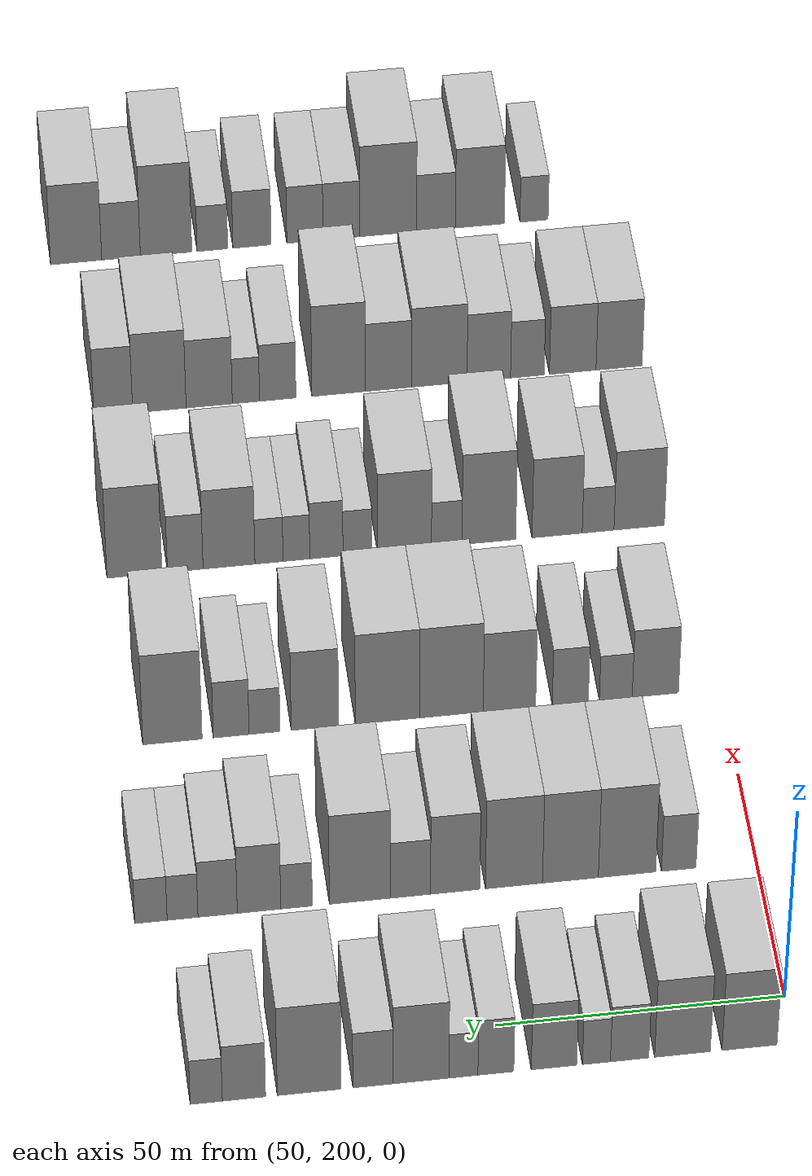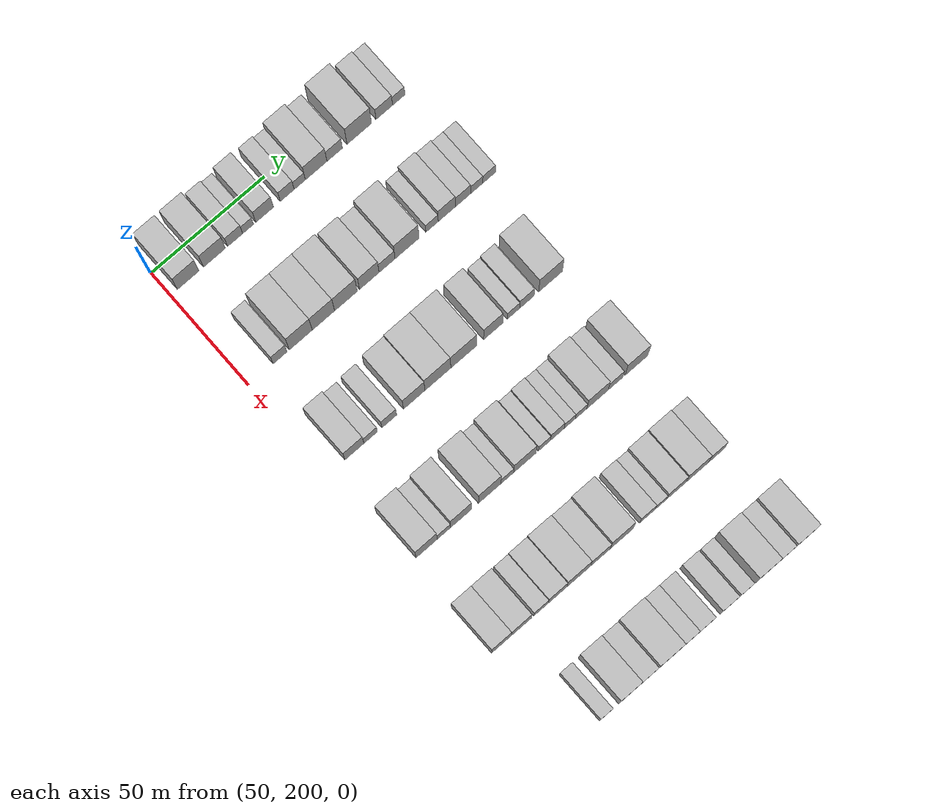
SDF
<sdf version="1.6">
 <world name="default">
  <model name="building_96">
   <static>1</static>
   <pose>50.0000 207.8356 0 0.000000 0.000000 0.000000</pose>
   <link name="link">
    <pose>0 0 10.50 0 0 0</pose>
    <collision name="collision"><geometry><box><size>20.0000 9.4873 21.0000</size></box></geometry></collision>
    <visual name="visual">
     <cast_shadows>0</cast_shadows>
     <geometry><box><size>20.0000 9.4873 21.0000</size></box></geometry>
     <material>
      <script>
       <uri>model://HANNAS_wall/materials/scripts</uri>
       <uri>model://HANNAS_wall/materials/textures</uri>
       <name>vrc/HANNAS_wall</name>
      </script>
     </material>
    </visual>
   </link>
  </model>
  <model name="building_97">
   <static>1</static>
   <pose>50.0000 219.3796 0 0.000000 0.000000 0.000000</pose>
   <link name="link">
    <pose>0 0 10.50 0 0 0</pose>
    <collision name="collision"><geometry><box><size>20.0000 9.6008 21.0000</size></box></geometry></collision>
    <visual name="visual">
     <cast_shadows>0</cast_shadows>
     <geometry><box><size>20.0000 9.6008 21.0000</size></box></geometry>
     <material>
      <script>
       <uri>model://HANNAS_wall/materials/scripts</uri>
       <uri>model://HANNAS_wall/materials/textures</uri>
       <name>vrc/HANNAS_wall</name>
      </script>
     </material>
    </visual>
   </link>
  </model>
  <model name="building_98">
   <static>1</static>
   <pose>50.0000 228.4856 0 0.000000 0.000000 0.000000</pose>
   <link name="link">
    <pose>0 0 7.50 0 0 0</pose>
    <collision name="collision"><geometry><box><size>20.0000 6.6113 15.0000</size></box></geometry></collision>
    <visual name="visual">
     <cast_shadows>0</cast_shadows>
     <geometry><box><size>20.0000 6.6113 15.0000</size></box></geometry>
     <material>
      <script>
       <uri>model://HANNAS_wall/materials/scripts</uri>
       <uri>model://HANNAS_wall/materials/textures</uri>
       <name>vrc/HANNAS_wall</name>
      </script>
     </material>
    </visual>
   </link>
  </model>
  <model name="building_99">
   <static>1</static>
   <pose>50.0000 234.1914 0 0.000000 0.000000 0.000000</pose>
   <link name="link">
    <pose>0 0 6.00 0 0 0</pose>
    <collision name="collision"><geometry><box><size>20.0000 4.8001 12.0000</size></box></geometry></collision>
    <visual name="visual">
     <cast_shadows>0</cast_shadows>
     <geometry><box><size>20.0000 4.8001 12.0000</size></box></geometry>
     <material>
      <script>
       <uri>model://HANNAS_wall/materials/scripts</uri>
       <uri>model://HANNAS_wall/materials/textures</uri>
       <name>vrc/HANNAS_wall</name>
      </script>
     </material>
    </visual>
   </link>
  </model>
  <model name="building_100">
   <static>1</static>
   <pose>50.0000 241.4872 0 0.000000 0.000000 0.000000</pose>
   <link name="link">
    <pose>0 0 9.00 0 0 0</pose>
    <collision name="collision"><geometry><box><size>20.0000 7.7915 18.0000</size></box></geometry></collision>
    <visual name="visual">
     <cast_shadows>0</cast_shadows>
     <geometry><box><size>20.0000 7.7915 18.0000</size></box></geometry>
     <material>
      <script>
       <uri>model://HANNAS_wall/materials/scripts</uri>
       <uri>model://HANNAS_wall/materials/textures</uri>
       <name>vrc/HANNAS_wall</name>
      </script>
     </material>
    </visual>
   </link>
  </model>
  <model name="building_101">
   <static>1</static>
   <pose>50.0000 251.4532 0 0.000000 0.000000 0.000000</pose>
   <link name="link">
    <pose>0 0 7.50 0 0 0</pose>
    <collision name="collision"><geometry><box><size>20.0000 6.1403 15.0000</size></box></geometry></collision>
    <visual name="visual">
     <cast_shadows>0</cast_shadows>
     <geometry><box><size>20.0000 6.1403 15.0000</size></box></geometry>
     <material>
      <script>
       <uri>model://HANNAS_wall/materials/scripts</uri>
       <uri>model://HANNAS_wall/materials/textures</uri>
       <name>vrc/HANNAS_wall</name>
      </script>
     </material>
    </visual>
   </link>
  </model>
  <model name="building_102">
   <static>1</static>
   <pose>50.0000 257.0127 0 0.000000 0.000000 0.000000</pose>
   <link name="link">
    <pose>0 0 6.00 0 0 0</pose>
    <collision name="collision"><geometry><box><size>20.0000 4.9788 12.0000</size></box></geometry></collision>
    <visual name="visual">
     <cast_shadows>0</cast_shadows>
     <geometry><box><size>20.0000 4.9788 12.0000</size></box></geometry>
     <material>
      <script>
       <uri>model://HANNAS_wall/materials/scripts</uri>
       <uri>model://HANNAS_wall/materials/textures</uri>
       <name>vrc/HANNAS_wall</name>
      </script>
     </material>
    </visual>
   </link>
  </model>
  <model name="building_103">
   <static>1</static>
   <pose>50.0000 264.2818 0 0.000000 0.000000 0.000000</pose>
   <link name="link">
    <pose>0 0 10.50 0 0 0</pose>
    <collision name="collision"><geometry><box><size>20.0000 9.5593 21.0000</size></box></geometry></collision>
    <visual name="visual">
     <cast_shadows>0</cast_shadows>
     <geometry><box><size>20.0000 9.5593 21.0000</size></box></geometry>
     <material>
      <script>
       <uri>model://HANNAS_wall/materials/scripts</uri>
       <uri>model://HANNAS_wall/materials/textures</uri>
       <name>vrc/HANNAS_wall</name>
      </script>
     </material>
    </visual>
   </link>
  </model>
  <model name="building_104">
   <static>1</static>
   <pose>50.0000 272.4915 0 0.000000 0.000000 0.000000</pose>
   <link name="link">
    <pose>0 0 7.50 0 0 0</pose>
    <collision name="collision"><geometry><box><size>20.0000 6.8600 15.0000</size></box></geometry></collision>
    <visual name="visual">
     <cast_shadows>0</cast_shadows>
     <geometry><box><size>20.0000 6.8600 15.0000</size></box></geometry>
     <material>
      <script>
       <uri>model://HANNAS_wall/materials/scripts</uri>
       <uri>model://HANNAS_wall/materials/textures</uri>
       <name>vrc/HANNAS_wall</name>
      </script>
     </material>
    </visual>
   </link>
  </model>
  <model name="building_105">
   <static>1</static>
   <pose>50.0000 283.3697 0 0.000000 0.000000 0.000000</pose>
   <link name="link">
    <pose>0 0 12.00 0 0 0</pose>
    <collision name="collision"><geometry><box><size>20.0000 10.8965 24.0000</size></box></geometry></collision>
    <visual name="visual">
     <cast_shadows>0</cast_shadows>
     <geometry><box><size>20.0000 10.8965 24.0000</size></box></geometry>
     <material>
      <script>
       <uri>model://HANNAS_wall/materials/scripts</uri>
       <uri>model://HANNAS_wall/materials/textures</uri>
       <name>vrc/HANNAS_wall</name>
      </script>
     </material>
    </visual>
   </link>
  </model>
  <model name="building_106">
   <static>1</static>
   <pose>50.0000 294.4948 0 0.000000 0.000000 0.000000</pose>
   <link name="link">
    <pose>0 0 7.50 0 0 0</pose>
    <collision name="collision"><geometry><box><size>20.0000 7.3537 15.0000</size></box></geometry></collision>
    <visual name="visual">
     <cast_shadows>0</cast_shadows>
     <geometry><box><size>20.0000 7.3537 15.0000</size></box></geometry>
     <material>
      <script>
       <uri>model://HANNAS_wall/materials/scripts</uri>
       <uri>model://HANNAS_wall/materials/textures</uri>
       <name>vrc/HANNAS_wall</name>
      </script>
     </material>
    </visual>
   </link>
  </model>
  <model name="building_107">
   <static>1</static>
   <pose>50.0000 300.9152 0 0.000000 0.000000 0.000000</pose>
   <link name="link">
    <pose>0 0 6.00 0 0 0</pose>
    <collision name="collision"><geometry><box><size>20.0000 5.4871 12.0000</size></box></geometry></collision>
    <visual name="visual">
     <cast_shadows>0</cast_shadows>
     <geometry><box><size>20.0000 5.4871 12.0000</size></box></geometry>
     <material>
      <script>
       <uri>model://HANNAS_wall/materials/scripts</uri>
       <uri>model://HANNAS_wall/materials/textures</uri>
       <name>vrc/HANNAS_wall</name>
      </script>
     </material>
    </visual>
   </link>
  </model>
  <model name="building_236">
   <static>1</static>
   <pose>90.0000 213.8010 0 0.000000 0.000000 0.000000</pose>
   <link name="link">
    <pose>0 0 7.50 0 0 0</pose>
    <collision name="collision"><geometry><box><size>20.0000 6.0938 15.0000</size></box></geometry></collision>
    <visual name="visual">
     <cast_shadows>0</cast_shadows>
     <geometry><box><size>20.0000 6.0938 15.0000</size></box></geometry>
     <material>
      <script>
       <uri>model://HANNAS_wall/materials/scripts</uri>
       <uri>model://HANNAS_wall/materials/textures</uri>
       <name>vrc/HANNAS_wall</name>
      </script>
     </material>
    </visual>
   </link>
  </model>
  <model name="building_237">
   <static>1</static>
   <pose>90.0000 222.8979 0 0.000000 0.000000 0.000000</pose>
   <link name="link">
    <pose>0 0 12.00 0 0 0</pose>
    <collision name="collision"><geometry><box><size>20.0000 10.0999 24.0000</size></box></geometry></collision>
    <visual name="visual">
     <cast_shadows>0</cast_shadows>
     <geometry><box><size>20.0000 10.0999 24.0000</size></box></geometry>
     <material>
      <script>
       <uri>model://HANNAS_wall/materials/scripts</uri>
       <uri>model://HANNAS_wall/materials/textures</uri>
       <name>vrc/HANNAS_wall</name>
      </script>
     </material>
    </visual>
   </link>
  </model>
  <model name="building_238">
   <static>1</static>
   <pose>90.0000 232.8708 0 0.000000 0.000000 0.000000</pose>
   <link name="link">
    <pose>0 0 12.00 0 0 0</pose>
    <collision name="collision"><geometry><box><size>20.0000 9.8459 24.0000</size></box></geometry></collision>
    <visual name="visual">
     <cast_shadows>0</cast_shadows>
     <geometry><box><size>20.0000 9.8459 24.0000</size></box></geometry>
     <material>
      <script>
       <uri>model://HANNAS_wall/materials/scripts</uri>
       <uri>model://HANNAS_wall/materials/textures</uri>
       <name>vrc/HANNAS_wall</name>
      </script>
     </material>
    </visual>
   </link>
  </model>
  <model name="building_239">
   <static>1</static>
   <pose>90.0000 242.7976 0 0.000000 0.000000 0.000000</pose>
   <link name="link">
    <pose>0 0 12.00 0 0 0</pose>
    <collision name="collision"><geometry><box><size>20.0000 10.0077 24.0000</size></box></geometry></collision>
    <visual name="visual">
     <cast_shadows>0</cast_shadows>
     <geometry><box><size>20.0000 10.0077 24.0000</size></box></geometry>
     <material>
      <script>
       <uri>model://HANNAS_wall/materials/scripts</uri>
       <uri>model://HANNAS_wall/materials/textures</uri>
       <name>vrc/HANNAS_wall</name>
      </script>
     </material>
    </visual>
   </link>
  </model>
  <model name="building_240">
   <static>1</static>
   <pose>90.0000 253.1156 0 0.000000 0.000000 0.000000</pose>
   <link name="link">
    <pose>0 0 10.50 0 0 0</pose>
    <collision name="collision"><geometry><box><size>20.0000 8.6283 21.0000</size></box></geometry></collision>
    <visual name="visual">
     <cast_shadows>0</cast_shadows>
     <geometry><box><size>20.0000 8.6283 21.0000</size></box></geometry>
     <material>
      <script>
       <uri>model://HANNAS_wall/materials/scripts</uri>
       <uri>model://HANNAS_wall/materials/textures</uri>
       <name>vrc/HANNAS_wall</name>
      </script>
     </material>
    </visual>
   </link>
  </model>
  <model name="building_241">
   <static>1</static>
   <pose>90.0000 260.9445 0 0.000000 0.000000 0.000000</pose>
   <link name="link">
    <pose>0 0 7.50 0 0 0</pose>
    <collision name="collision"><geometry><box><size>20.0000 7.0295 15.0000</size></box></geometry></collision>
    <visual name="visual">
     <cast_shadows>0</cast_shadows>
     <geometry><box><size>20.0000 7.0295 15.0000</size></box></geometry>
     <material>
      <script>
       <uri>model://HANNAS_wall/materials/scripts</uri>
       <uri>model://HANNAS_wall/materials/textures</uri>
       <name>vrc/HANNAS_wall</name>
      </script>
     </material>
    </visual>
   </link>
  </model>
  <model name="building_242">
   <static>1</static>
   <pose>90.0000 269.7858 0 0.000000 0.000000 0.000000</pose>
   <link name="link">
    <pose>0 0 12.00 0 0 0</pose>
    <collision name="collision"><geometry><box><size>20.0000 10.6531 24.0000</size></box></geometry></collision>
    <visual name="visual">
     <cast_shadows>0</cast_shadows>
     <geometry><box><size>20.0000 10.6531 24.0000</size></box></geometry>
     <material>
      <script>
       <uri>model://HANNAS_wall/materials/scripts</uri>
       <uri>model://HANNAS_wall/materials/textures</uri>
       <name>vrc/HANNAS_wall</name>
      </script>
     </material>
    </visual>
   </link>
  </model>
  <model name="building_243">
   <static>1</static>
   <pose>90.0000 280.8586 0 0.000000 0.000000 0.000000</pose>
   <link name="link">
    <pose>0 0 6.00 0 0 0</pose>
    <collision name="collision"><geometry><box><size>20.0000 5.4924 12.0000</size></box></geometry></collision>
    <visual name="visual">
     <cast_shadows>0</cast_shadows>
     <geometry><box><size>20.0000 5.4924 12.0000</size></box></geometry>
     <material>
      <script>
       <uri>model://HANNAS_wall/materials/scripts</uri>
       <uri>model://HANNAS_wall/materials/textures</uri>
       <name>vrc/HANNAS_wall</name>
      </script>
     </material>
    </visual>
   </link>
  </model>
  <model name="building_244">
   <static>1</static>
   <pose>90.0000 287.3994 0 0.000000 0.000000 0.000000</pose>
   <link name="link">
    <pose>0 0 9.00 0 0 0</pose>
    <collision name="collision"><geometry><box><size>20.0000 7.5894 18.0000</size></box></geometry></collision>
    <visual name="visual">
     <cast_shadows>0</cast_shadows>
     <geometry><box><size>20.0000 7.5894 18.0000</size></box></geometry>
     <material>
      <script>
       <uri>model://HANNAS_wall/materials/scripts</uri>
       <uri>model://HANNAS_wall/materials/textures</uri>
       <name>vrc/HANNAS_wall</name>
      </script>
     </material>
    </visual>
   </link>
  </model>
  <model name="building_245">
   <static>1</static>
   <pose>90.0000 294.6220 0 0.000000 0.000000 0.000000</pose>
   <link name="link">
    <pose>0 0 7.50 0 0 0</pose>
    <collision name="collision"><geometry><box><size>20.0000 6.8557 15.0000</size></box></geometry></collision>
    <visual name="visual">
     <cast_shadows>0</cast_shadows>
     <geometry><box><size>20.0000 6.8557 15.0000</size></box></geometry>
     <material>
      <script>
       <uri>model://HANNAS_wall/materials/scripts</uri>
       <uri>model://HANNAS_wall/materials/textures</uri>
       <name>vrc/HANNAS_wall</name>
      </script>
     </material>
    </visual>
   </link>
  </model>
  <model name="building_246">
   <static>1</static>
   <pose>90.0000 300.7354 0 0.000000 0.000000 0.000000</pose>
   <link name="link">
    <pose>0 0 6.00 0 0 0</pose>
    <collision name="collision"><geometry><box><size>20.0000 5.3711 12.0000</size></box></geometry></collision>
    <visual name="visual">
     <cast_shadows>0</cast_shadows>
     <geometry><box><size>20.0000 5.3711 12.0000</size></box></geometry>
     <material>
      <script>
       <uri>model://HANNAS_wall/materials/scripts</uri>
       <uri>model://HANNAS_wall/materials/textures</uri>
       <name>vrc/HANNAS_wall</name>
      </script>
     </material>
    </visual>
   </link>
  </model>
  <model name="building_247">
   <static>1</static>
   <pose>90.0000 306.2318 0 0.000000 0.000000 0.000000</pose>
   <link name="link">
    <pose>0 0 6.00 0 0 0</pose>
    <collision name="collision"><geometry><box><size>20.0000 5.6217 12.0000</size></box></geometry></collision>
    <visual name="visual">
     <cast_shadows>0</cast_shadows>
     <geometry><box><size>20.0000 5.6217 12.0000</size></box></geometry>
     <material>
      <script>
       <uri>model://HANNAS_wall/materials/scripts</uri>
       <uri>model://HANNAS_wall/materials/textures</uri>
       <name>vrc/HANNAS_wall</name>
      </script>
     </material>
    </visual>
   </link>
  </model>
  <model name="building_375">
   <static>1</static>
   <pose>130.0000 211.7803 0 0.000000 0.000000 0.000000</pose>
   <link name="link">
    <pose>0 0 9.00 0 0 0</pose>
    <collision name="collision"><geometry><box><size>20.0000 8.3317 18.0000</size></box></geometry></collision>
    <visual name="visual">
     <cast_shadows>0</cast_shadows>
     <geometry><box><size>20.0000 8.3317 18.0000</size></box></geometry>
     <material>
      <script>
       <uri>model://HANNAS_wall/materials/scripts</uri>
       <uri>model://HANNAS_wall/materials/textures</uri>
       <name>vrc/HANNAS_wall</name>
      </script>
     </material>
    </visual>
   </link>
  </model>
  <model name="building_376">
   <static>1</static>
   <pose>130.0000 218.9054 0 0.000000 0.000000 0.000000</pose>
   <link name="link">
    <pose>0 0 6.00 0 0 0</pose>
    <collision name="collision"><geometry><box><size>20.0000 5.9186 12.0000</size></box></geometry></collision>
    <visual name="visual">
     <cast_shadows>0</cast_shadows>
     <geometry><box><size>20.0000 5.9186 12.0000</size></box></geometry>
     <material>
      <script>
       <uri>model://HANNAS_wall/materials/scripts</uri>
       <uri>model://HANNAS_wall/materials/textures</uri>
       <name>vrc/HANNAS_wall</name>
      </script>
     </material>
    </visual>
   </link>
  </model>
  <model name="building_377">
   <static>1</static>
   <pose>130.0000 227.1018 0 0.000000 0.000000 0.000000</pose>
   <link name="link">
    <pose>0 0 7.50 0 0 0</pose>
    <collision name="collision"><geometry><box><size>20.0000 6.4743 15.0000</size></box></geometry></collision>
    <visual name="visual">
     <cast_shadows>0</cast_shadows>
     <geometry><box><size>20.0000 6.4743 15.0000</size></box></geometry>
     <material>
      <script>
       <uri>model://HANNAS_wall/materials/scripts</uri>
       <uri>model://HANNAS_wall/materials/textures</uri>
       <name>vrc/HANNAS_wall</name>
      </script>
     </material>
    </visual>
   </link>
  </model>
  <model name="building_378">
   <static>1</static>
   <pose>130.0000 238.0516 0 0.000000 0.000000 0.000000</pose>
   <link name="link">
    <pose>0 0 10.50 0 0 0</pose>
    <collision name="collision"><geometry><box><size>20.0000 9.4253 21.0000</size></box></geometry></collision>
    <visual name="visual">
     <cast_shadows>0</cast_shadows>
     <geometry><box><size>20.0000 9.4253 21.0000</size></box></geometry>
     <material>
      <script>
       <uri>model://HANNAS_wall/materials/scripts</uri>
       <uri>model://HANNAS_wall/materials/textures</uri>
       <name>vrc/HANNAS_wall</name>
      </script>
     </material>
    </visual>
   </link>
  </model>
  <model name="building_379">
   <static>1</static>
   <pose>130.0000 248.4766 0 0.000000 0.000000 0.000000</pose>
   <link name="link">
    <pose>0 0 12.00 0 0 0</pose>
    <collision name="collision"><geometry><box><size>20.0000 11.4246 24.0000</size></box></geometry></collision>
    <visual name="visual">
     <cast_shadows>0</cast_shadows>
     <geometry><box><size>20.0000 11.4246 24.0000</size></box></geometry>
     <material>
      <script>
       <uri>model://HANNAS_wall/materials/scripts</uri>
       <uri>model://HANNAS_wall/materials/textures</uri>
       <name>vrc/HANNAS_wall</name>
      </script>
     </material>
    </visual>
   </link>
  </model>
  <model name="building_380">
   <static>1</static>
   <pose>130.0000 259.9280 0 0.000000 0.000000 0.000000</pose>
   <link name="link">
    <pose>0 0 12.00 0 0 0</pose>
    <collision name="collision"><geometry><box><size>20.0000 11.4783 24.0000</size></box></geometry></collision>
    <visual name="visual">
     <cast_shadows>0</cast_shadows>
     <geometry><box><size>20.0000 11.4783 24.0000</size></box></geometry>
     <material>
      <script>
       <uri>model://HANNAS_wall/materials/scripts</uri>
       <uri>model://HANNAS_wall/materials/textures</uri>
       <name>vrc/HANNAS_wall</name>
      </script>
     </material>
    </visual>
   </link>
  </model>
  <model name="building_381">
   <static>1</static>
   <pose>130.0000 272.9007 0 0.000000 0.000000 0.000000</pose>
   <link name="link">
    <pose>0 0 10.50 0 0 0</pose>
    <collision name="collision"><geometry><box><size>20.0000 8.4670 21.0000</size></box></geometry></collision>
    <visual name="visual">
     <cast_shadows>0</cast_shadows>
     <geometry><box><size>20.0000 8.4670 21.0000</size></box></geometry>
     <material>
      <script>
       <uri>model://HANNAS_wall/materials/scripts</uri>
       <uri>model://HANNAS_wall/materials/textures</uri>
       <name>vrc/HANNAS_wall</name>
      </script>
     </material>
    </visual>
   </link>
  </model>
  <model name="building_382">
   <static>1</static>
   <pose>130.0000 281.8961 0 0.000000 0.000000 0.000000</pose>
   <link name="link">
    <pose>0 0 6.00 0 0 0</pose>
    <collision name="collision"><geometry><box><size>20.0000 5.5237 12.0000</size></box></geometry></collision>
    <visual name="visual">
     <cast_shadows>0</cast_shadows>
     <geometry><box><size>20.0000 5.5237 12.0000</size></box></geometry>
     <material>
      <script>
       <uri>model://HANNAS_wall/materials/scripts</uri>
       <uri>model://HANNAS_wall/materials/textures</uri>
       <name>vrc/HANNAS_wall</name>
      </script>
     </material>
    </visual>
   </link>
  </model>
  <model name="building_383">
   <static>1</static>
   <pose>130.0000 287.8518 0 0.000000 0.000000 0.000000</pose>
   <link name="link">
    <pose>0 0 7.50 0 0 0</pose>
    <collision name="collision"><geometry><box><size>20.0000 6.3878 15.0000</size></box></geometry></collision>
    <visual name="visual">
     <cast_shadows>0</cast_shadows>
     <geometry><box><size>20.0000 6.3878 15.0000</size></box></geometry>
     <material>
      <script>
       <uri>model://HANNAS_wall/materials/scripts</uri>
       <uri>model://HANNAS_wall/materials/textures</uri>
       <name>vrc/HANNAS_wall</name>
      </script>
     </material>
    </visual>
   </link>
  </model>
  <model name="building_384">
   <static>1</static>
   <pose>130.0000 298.3275 0 0.000000 0.000000 0.000000</pose>
   <link name="link">
    <pose>0 0 12.00 0 0 0</pose>
    <collision name="collision"><geometry><box><size>20.0000 10.5637 24.0000</size></box></geometry></collision>
    <visual name="visual">
     <cast_shadows>0</cast_shadows>
     <geometry><box><size>20.0000 10.5637 24.0000</size></box></geometry>
     <material>
      <script>
       <uri>model://HANNAS_wall/materials/scripts</uri>
       <uri>model://HANNAS_wall/materials/textures</uri>
       <name>vrc/HANNAS_wall</name>
      </script>
     </material>
    </visual>
   </link>
  </model>
  <model name="building_514">
   <static>1</static>
   <pose>170.0000 208.6148 0 0.000000 0.000000 0.000000</pose>
   <link name="link">
    <pose>0 0 10.50 0 0 0</pose>
    <collision name="collision"><geometry><box><size>20.0000 9.2839 21.0000</size></box></geometry></collision>
    <visual name="visual">
     <cast_shadows>0</cast_shadows>
     <geometry><box><size>20.0000 9.2839 21.0000</size></box></geometry>
     <material>
      <script>
       <uri>model://HANNAS_wall/materials/scripts</uri>
       <uri>model://HANNAS_wall/materials/textures</uri>
       <name>vrc/HANNAS_wall</name>
      </script>
     </material>
    </visual>
   </link>
  </model>
  <model name="building_515">
   <static>1</static>
   <pose>170.0000 216.1847 0 0.000000 0.000000 0.000000</pose>
   <link name="link">
    <pose>0 0 6.00 0 0 0</pose>
    <collision name="collision"><geometry><box><size>20.0000 5.8559 12.0000</size></box></geometry></collision>
    <visual name="visual">
     <cast_shadows>0</cast_shadows>
     <geometry><box><size>20.0000 5.8559 12.0000</size></box></geometry>
     <material>
      <script>
       <uri>model://HANNAS_wall/materials/scripts</uri>
       <uri>model://HANNAS_wall/materials/textures</uri>
       <name>vrc/HANNAS_wall</name>
      </script>
     </material>
    </visual>
   </link>
  </model>
  <model name="building_516">
   <static>1</static>
   <pose>170.0000 223.7292 0 0.000000 0.000000 0.000000</pose>
   <link name="link">
    <pose>0 0 10.50 0 0 0</pose>
    <collision name="collision"><geometry><box><size>20.0000 9.2330 21.0000</size></box></geometry></collision>
    <visual name="visual">
     <cast_shadows>0</cast_shadows>
     <geometry><box><size>20.0000 9.2330 21.0000</size></box></geometry>
     <material>
      <script>
       <uri>model://HANNAS_wall/materials/scripts</uri>
       <uri>model://HANNAS_wall/materials/textures</uri>
       <name>vrc/HANNAS_wall</name>
      </script>
     </material>
    </visual>
   </link>
  </model>
  <model name="building_517">
   <static>1</static>
   <pose>170.0000 236.2787 0 0.000000 0.000000 0.000000</pose>
   <link name="link">
    <pose>0 0 12.00 0 0 0</pose>
    <collision name="collision"><geometry><box><size>20.0000 9.8661 24.0000</size></box></geometry></collision>
    <visual name="visual">
     <cast_shadows>0</cast_shadows>
     <geometry><box><size>20.0000 9.8661 24.0000</size></box></geometry>
     <material>
      <script>
       <uri>model://HANNAS_wall/materials/scripts</uri>
       <uri>model://HANNAS_wall/materials/textures</uri>
       <name>vrc/HANNAS_wall</name>
      </script>
     </material>
    </visual>
   </link>
  </model>
  <model name="building_518">
   <static>1</static>
   <pose>170.0000 244.0102 0 0.000000 0.000000 0.000000</pose>
   <link name="link">
    <pose>0 0 6.00 0 0 0</pose>
    <collision name="collision"><geometry><box><size>20.0000 5.5968 12.0000</size></box></geometry></collision>
    <visual name="visual">
     <cast_shadows>0</cast_shadows>
     <geometry><box><size>20.0000 5.5968 12.0000</size></box></geometry>
     <material>
      <script>
       <uri>model://HANNAS_wall/materials/scripts</uri>
       <uri>model://HANNAS_wall/materials/textures</uri>
       <name>vrc/HANNAS_wall</name>
      </script>
     </material>
    </visual>
   </link>
  </model>
  <model name="building_519">
   <static>1</static>
   <pose>170.0000 251.7540 0 0.000000 0.000000 0.000000</pose>
   <link name="link">
    <pose>0 0 10.50 0 0 0</pose>
    <collision name="collision"><geometry><box><size>20.0000 9.8908 21.0000</size></box></geometry></collision>
    <visual name="visual">
     <cast_shadows>0</cast_shadows>
     <geometry><box><size>20.0000 9.8908 21.0000</size></box></geometry>
     <material>
      <script>
       <uri>model://HANNAS_wall/materials/scripts</uri>
       <uri>model://HANNAS_wall/materials/textures</uri>
       <name>vrc/HANNAS_wall</name>
      </script>
     </material>
    </visual>
   </link>
  </model>
  <model name="building_520">
   <static>1</static>
   <pose>170.0000 260.3541 0 0.000000 0.000000 0.000000</pose>
   <link name="link">
    <pose>0 0 6.00 0 0 0</pose>
    <collision name="collision"><geometry><box><size>20.0000 5.3095 12.0000</size></box></geometry></collision>
    <visual name="visual">
     <cast_shadows>0</cast_shadows>
     <geometry><box><size>20.0000 5.3095 12.0000</size></box></geometry>
     <material>
      <script>
       <uri>model://HANNAS_wall/materials/scripts</uri>
       <uri>model://HANNAS_wall/materials/textures</uri>
       <name>vrc/HANNAS_wall</name>
      </script>
     </material>
    </visual>
   </link>
  </model>
  <model name="building_521">
   <static>1</static>
   <pose>170.0000 266.0452 0 0.000000 0.000000 0.000000</pose>
   <link name="link">
    <pose>0 0 7.50 0 0 0</pose>
    <collision name="collision"><geometry><box><size>20.0000 6.0726 15.0000</size></box></geometry></collision>
    <visual name="visual">
     <cast_shadows>0</cast_shadows>
     <geometry><box><size>20.0000 6.0726 15.0000</size></box></geometry>
     <material>
      <script>
       <uri>model://HANNAS_wall/materials/scripts</uri>
       <uri>model://HANNAS_wall/materials/textures</uri>
       <name>vrc/HANNAS_wall</name>
      </script>
     </material>
    </visual>
   </link>
  </model>
  <model name="building_522">
   <static>1</static>
   <pose>170.0000 271.5279 0 0.000000 0.000000 0.000000</pose>
   <link name="link">
    <pose>0 0 6.00 0 0 0</pose>
    <collision name="collision"><geometry><box><size>20.0000 4.8929 12.0000</size></box></geometry></collision>
    <visual name="visual">
     <cast_shadows>0</cast_shadows>
     <geometry><box><size>20.0000 4.8929 12.0000</size></box></geometry>
     <material>
      <script>
       <uri>model://HANNAS_wall/materials/scripts</uri>
       <uri>model://HANNAS_wall/materials/textures</uri>
       <name>vrc/HANNAS_wall</name>
      </script>
     </material>
    </visual>
   </link>
  </model>
  <model name="building_523">
   <static>1</static>
   <pose>170.0000 276.5375 0 0.000000 0.000000 0.000000</pose>
   <link name="link">
    <pose>0 0 6.00 0 0 0</pose>
    <collision name="collision"><geometry><box><size>20.0000 5.1263 12.0000</size></box></geometry></collision>
    <visual name="visual">
     <cast_shadows>0</cast_shadows>
     <geometry><box><size>20.0000 5.1263 12.0000</size></box></geometry>
     <material>
      <script>
       <uri>model://HANNAS_wall/materials/scripts</uri>
       <uri>model://HANNAS_wall/materials/textures</uri>
       <name>vrc/HANNAS_wall</name>
      </script>
     </material>
    </visual>
   </link>
  </model>
  <model name="building_524">
   <static>1</static>
   <pose>170.0000 283.8360 0 0.000000 0.000000 0.000000</pose>
   <link name="link">
    <pose>0 0 10.50 0 0 0</pose>
    <collision name="collision"><geometry><box><size>20.0000 9.4705 21.0000</size></box></geometry></collision>
    <visual name="visual">
     <cast_shadows>0</cast_shadows>
     <geometry><box><size>20.0000 9.4705 21.0000</size></box></geometry>
     <material>
      <script>
       <uri>model://HANNAS_wall/materials/scripts</uri>
       <uri>model://HANNAS_wall/materials/textures</uri>
       <name>vrc/HANNAS_wall</name>
      </script>
     </material>
    </visual>
   </link>
  </model>
  <model name="building_525">
   <static>1</static>
   <pose>170.0000 291.8179 0 0.000000 0.000000 0.000000</pose>
   <link name="link">
    <pose>0 0 7.50 0 0 0</pose>
    <collision name="collision"><geometry><box><size>20.0000 6.4934 15.0000</size></box></geometry></collision>
    <visual name="visual">
     <cast_shadows>0</cast_shadows>
     <geometry><box><size>20.0000 6.4934 15.0000</size></box></geometry>
     <material>
      <script>
       <uri>model://HANNAS_wall/materials/scripts</uri>
       <uri>model://HANNAS_wall/materials/textures</uri>
       <name>vrc/HANNAS_wall</name>
      </script>
     </material>
    </visual>
   </link>
  </model>
  <model name="building_526">
   <static>1</static>
   <pose>170.0000 301.0713 0 0.000000 0.000000 0.000000</pose>
   <link name="link">
    <pose>0 0 12.00 0 0 0</pose>
    <collision name="collision"><geometry><box><size>20.0000 10.0132 24.0000</size></box></geometry></collision>
    <visual name="visual">
     <cast_shadows>0</cast_shadows>
     <geometry><box><size>20.0000 10.0132 24.0000</size></box></geometry>
     <material>
      <script>
       <uri>model://HANNAS_wall/materials/scripts</uri>
       <uri>model://HANNAS_wall/materials/textures</uri>
       <name>vrc/HANNAS_wall</name>
      </script>
     </material>
    </visual>
   </link>
  </model>
  <model name="building_652">
   <static>1</static>
   <pose>210.0000 206.3410 0 0.000000 0.000000 0.000000</pose>
   <link name="link">
    <pose>0 0 9.00 0 0 0</pose>
    <collision name="collision"><geometry><box><size>20.0000 8.6662 18.0000</size></box></geometry></collision>
    <visual name="visual">
     <cast_shadows>0</cast_shadows>
     <geometry><box><size>20.0000 8.6662 18.0000</size></box></geometry>
     <material>
      <script>
       <uri>model://HANNAS_wall/materials/scripts</uri>
       <uri>model://HANNAS_wall/materials/textures</uri>
       <name>vrc/HANNAS_wall</name>
      </script>
     </material>
    </visual>
   </link>
  </model>
  <model name="building_653">
   <static>1</static>
   <pose>210.0000 215.0554 0 0.000000 0.000000 0.000000</pose>
   <link name="link">
    <pose>0 0 9.00 0 0 0</pose>
    <collision name="collision"><geometry><box><size>20.0000 8.7626 18.0000</size></box></geometry></collision>
    <visual name="visual">
     <cast_shadows>0</cast_shadows>
     <geometry><box><size>20.0000 8.7626 18.0000</size></box></geometry>
     <material>
      <script>
       <uri>model://HANNAS_wall/materials/scripts</uri>
       <uri>model://HANNAS_wall/materials/textures</uri>
       <name>vrc/HANNAS_wall</name>
      </script>
     </material>
    </visual>
   </link>
  </model>
  <model name="building_654">
   <static>1</static>
   <pose>210.0000 223.5914 0 0.000000 0.000000 0.000000</pose>
   <link name="link">
    <pose>0 0 7.50 0 0 0</pose>
    <collision name="collision"><geometry><box><size>20.0000 6.3094 15.0000</size></box></geometry></collision>
    <visual name="visual">
     <cast_shadows>0</cast_shadows>
     <geometry><box><size>20.0000 6.3094 15.0000</size></box></geometry>
     <material>
      <script>
       <uri>model://HANNAS_wall/materials/scripts</uri>
       <uri>model://HANNAS_wall/materials/textures</uri>
       <name>vrc/HANNAS_wall</name>
      </script>
     </material>
    </visual>
   </link>
  </model>
  <model name="building_655">
   <static>1</static>
   <pose>210.0000 230.8331 0 0.000000 0.000000 0.000000</pose>
   <link name="link">
    <pose>0 0 9.00 0 0 0</pose>
    <collision name="collision"><geometry><box><size>20.0000 8.1740 18.0000</size></box></geometry></collision>
    <visual name="visual">
     <cast_shadows>0</cast_shadows>
     <geometry><box><size>20.0000 8.1740 18.0000</size></box></geometry>
     <material>
      <script>
       <uri>model://HANNAS_wall/materials/scripts</uri>
       <uri>model://HANNAS_wall/materials/textures</uri>
       <name>vrc/HANNAS_wall</name>
      </script>
     </material>
    </visual>
   </link>
  </model>
  <model name="building_656">
   <static>1</static>
   <pose>210.0000 240.1173 0 0.000000 0.000000 0.000000</pose>
   <link name="link">
    <pose>0 0 10.50 0 0 0</pose>
    <collision name="collision"><geometry><box><size>20.0000 10.3945 21.0000</size></box></geometry></collision>
    <visual name="visual">
     <cast_shadows>0</cast_shadows>
     <geometry><box><size>20.0000 10.3945 21.0000</size></box></geometry>
     <material>
      <script>
       <uri>model://HANNAS_wall/materials/scripts</uri>
       <uri>model://HANNAS_wall/materials/textures</uri>
       <name>vrc/HANNAS_wall</name>
      </script>
     </material>
    </visual>
   </link>
  </model>
  <model name="building_657">
   <static>1</static>
   <pose>210.0000 249.6280 0 0.000000 0.000000 0.000000</pose>
   <link name="link">
    <pose>0 0 9.00 0 0 0</pose>
    <collision name="collision"><geometry><box><size>20.0000 8.6270 18.0000</size></box></geometry></collision>
    <visual name="visual">
     <cast_shadows>0</cast_shadows>
     <geometry><box><size>20.0000 8.6270 18.0000</size></box></geometry>
     <material>
      <script>
       <uri>model://HANNAS_wall/materials/scripts</uri>
       <uri>model://HANNAS_wall/materials/textures</uri>
       <name>vrc/HANNAS_wall</name>
      </script>
     </material>
    </visual>
   </link>
  </model>
  <model name="building_658">
   <static>1</static>
   <pose>210.0000 258.9503 0 0.000000 0.000000 0.000000</pose>
   <link name="link">
    <pose>0 0 12.00 0 0 0</pose>
    <collision name="collision"><geometry><box><size>20.0000 10.0175 24.0000</size></box></geometry></collision>
    <visual name="visual">
     <cast_shadows>0</cast_shadows>
     <geometry><box><size>20.0000 10.0175 24.0000</size></box></geometry>
     <material>
      <script>
       <uri>model://HANNAS_wall/materials/scripts</uri>
       <uri>model://HANNAS_wall/materials/textures</uri>
       <name>vrc/HANNAS_wall</name>
      </script>
     </material>
    </visual>
   </link>
  </model>
  <model name="building_659">
   <static>1</static>
   <pose>210.0000 270.3493 0 0.000000 0.000000 0.000000</pose>
   <link name="link">
    <pose>0 0 7.50 0 0 0</pose>
    <collision name="collision"><geometry><box><size>20.0000 6.7804 15.0000</size></box></geometry></collision>
    <visual name="visual">
     <cast_shadows>0</cast_shadows>
     <geometry><box><size>20.0000 6.7804 15.0000</size></box></geometry>
     <material>
      <script>
       <uri>model://HANNAS_wall/materials/scripts</uri>
       <uri>model://HANNAS_wall/materials/textures</uri>
       <name>vrc/HANNAS_wall</name>
      </script>
     </material>
    </visual>
   </link>
  </model>
  <model name="building_660">
   <static>1</static>
   <pose>210.0000 276.2804 0 0.000000 0.000000 0.000000</pose>
   <link name="link">
    <pose>0 0 6.00 0 0 0</pose>
    <collision name="collision"><geometry><box><size>20.0000 5.0818 12.0000</size></box></geometry></collision>
    <visual name="visual">
     <cast_shadows>0</cast_shadows>
     <geometry><box><size>20.0000 5.0818 12.0000</size></box></geometry>
     <material>
      <script>
       <uri>model://HANNAS_wall/materials/scripts</uri>
       <uri>model://HANNAS_wall/materials/textures</uri>
       <name>vrc/HANNAS_wall</name>
      </script>
     </material>
    </visual>
   </link>
  </model>
  <model name="building_661">
   <static>1</static>
   <pose>210.0000 283.1268 0 0.000000 0.000000 0.000000</pose>
   <link name="link">
    <pose>0 0 9.00 0 0 0</pose>
    <collision name="collision"><geometry><box><size>20.0000 8.6110 18.0000</size></box></geometry></collision>
    <visual name="visual">
     <cast_shadows>0</cast_shadows>
     <geometry><box><size>20.0000 8.6110 18.0000</size></box></geometry>
     <material>
      <script>
       <uri>model://HANNAS_wall/materials/scripts</uri>
       <uri>model://HANNAS_wall/materials/textures</uri>
       <name>vrc/HANNAS_wall</name>
      </script>
     </material>
    </visual>
   </link>
  </model>
  <model name="building_662">
   <static>1</static>
   <pose>210.0000 292.4066 0 0.000000 0.000000 0.000000</pose>
   <link name="link">
    <pose>0 0 10.50 0 0 0</pose>
    <collision name="collision"><geometry><box><size>20.0000 9.9487 21.0000</size></box></geometry></collision>
    <visual name="visual">
     <cast_shadows>0</cast_shadows>
     <geometry><box><size>20.0000 9.9487 21.0000</size></box></geometry>
     <material>
      <script>
       <uri>model://HANNAS_wall/materials/scripts</uri>
       <uri>model://HANNAS_wall/materials/textures</uri>
       <name>vrc/HANNAS_wall</name>
      </script>
     </material>
    </visual>
   </link>
  </model>
  <model name="building_663">
   <static>1</static>
   <pose>210.0000 300.9876 0 0.000000 0.000000 0.000000</pose>
   <link name="link">
    <pose>0 0 9.00 0 0 0</pose>
    <collision name="collision"><geometry><box><size>20.0000 7.2133 18.0000</size></box></geometry></collision>
    <visual name="visual">
     <cast_shadows>0</cast_shadows>
     <geometry><box><size>20.0000 7.2133 18.0000</size></box></geometry>
     <material>
      <script>
       <uri>model://HANNAS_wall/materials/scripts</uri>
       <uri>model://HANNAS_wall/materials/textures</uri>
       <name>vrc/HANNAS_wall</name>
      </script>
     </material>
    </visual>
   </link>
  </model>
  <model name="building_797">
   <static>1</static>
   <pose>250.0000 216.6923 0 0.000000 0.000000 0.000000</pose>
   <link name="link">
    <pose>0 0 6.00 0 0 0</pose>
    <collision name="collision"><geometry><box><size>20.0000 5.3977 12.0000</size></box></geometry></collision>
    <visual name="visual">
     <cast_shadows>0</cast_shadows>
     <geometry><box><size>20.0000 5.3977 12.0000</size></box></geometry>
     <material>
      <script>
       <uri>model://HANNAS_wall/materials/scripts</uri>
       <uri>model://HANNAS_wall/materials/textures</uri>
       <name>vrc/HANNAS_wall</name>
      </script>
     </material>
    </visual>
   </link>
  </model>
  <model name="building_798">
   <static>1</static>
   <pose>250.0000 227.0766 0 0.000000 0.000000 0.000000</pose>
   <link name="link">
    <pose>0 0 10.50 0 0 0</pose>
    <collision name="collision"><geometry><box><size>20.0000 9.3710 21.0000</size></box></geometry></collision>
    <visual name="visual">
     <cast_shadows>0</cast_shadows>
     <geometry><box><size>20.0000 9.3710 21.0000</size></box></geometry>
     <material>
      <script>
       <uri>model://HANNAS_wall/materials/scripts</uri>
       <uri>model://HANNAS_wall/materials/textures</uri>
       <name>vrc/HANNAS_wall</name>
      </script>
     </material>
    </visual>
   </link>
  </model>
  <model name="building_799">
   <static>1</static>
   <pose>250.0000 235.4739 0 0.000000 0.000000 0.000000</pose>
   <link name="link">
    <pose>0 0 7.50 0 0 0</pose>
    <collision name="collision"><geometry><box><size>20.0000 7.4236 15.0000</size></box></geometry></collision>
    <visual name="visual">
     <cast_shadows>0</cast_shadows>
     <geometry><box><size>20.0000 7.4236 15.0000</size></box></geometry>
     <material>
      <script>
       <uri>model://HANNAS_wall/materials/scripts</uri>
       <uri>model://HANNAS_wall/materials/textures</uri>
       <name>vrc/HANNAS_wall</name>
      </script>
     </material>
    </visual>
   </link>
  </model>
  <model name="building_800">
   <static>1</static>
   <pose>250.0000 244.6387 0 0.000000 0.000000 0.000000</pose>
   <link name="link">
    <pose>0 0 12.00 0 0 0</pose>
    <collision name="collision"><geometry><box><size>20.0000 10.9059 24.0000</size></box></geometry></collision>
    <visual name="visual">
     <cast_shadows>0</cast_shadows>
     <geometry><box><size>20.0000 10.9059 24.0000</size></box></geometry>
     <material>
      <script>
       <uri>model://HANNAS_wall/materials/scripts</uri>
       <uri>model://HANNAS_wall/materials/textures</uri>
       <name>vrc/HANNAS_wall</name>
      </script>
     </material>
    </visual>
   </link>
  </model>
  <model name="building_801">
   <static>1</static>
   <pose>250.0000 253.5973 0 0.000000 0.000000 0.000000</pose>
   <link name="link">
    <pose>0 0 7.50 0 0 0</pose>
    <collision name="collision"><geometry><box><size>20.0000 7.0113 15.0000</size></box></geometry></collision>
    <visual name="visual">
     <cast_shadows>0</cast_shadows>
     <geometry><box><size>20.0000 7.0113 15.0000</size></box></geometry>
     <material>
      <script>
       <uri>model://HANNAS_wall/materials/scripts</uri>
       <uri>model://HANNAS_wall/materials/textures</uri>
       <name>vrc/HANNAS_wall</name>
      </script>
     </material>
    </visual>
   </link>
  </model>
  <model name="building_802">
   <static>1</static>
   <pose>250.0000 260.5555 0 0.000000 0.000000 0.000000</pose>
   <link name="link">
    <pose>0 0 7.50 0 0 0</pose>
    <collision name="collision"><geometry><box><size>20.0000 6.9053 15.0000</size></box></geometry></collision>
    <visual name="visual">
     <cast_shadows>0</cast_shadows>
     <geometry><box><size>20.0000 6.9053 15.0000</size></box></geometry>
     <material>
      <script>
       <uri>model://HANNAS_wall/materials/scripts</uri>
       <uri>model://HANNAS_wall/materials/textures</uri>
       <name>vrc/HANNAS_wall</name>
      </script>
     </material>
    </visual>
   </link>
  </model>
  <model name="building_803">
   <static>1</static>
   <pose>250.0000 270.6485 0 0.000000 0.000000 0.000000</pose>
   <link name="link">
    <pose>0 0 7.50 0 0 0</pose>
    <collision name="collision"><geometry><box><size>20.0000 7.2807 15.0000</size></box></geometry></collision>
    <visual name="visual">
     <cast_shadows>0</cast_shadows>
     <geometry><box><size>20.0000 7.2807 15.0000</size></box></geometry>
     <material>
      <script>
       <uri>model://HANNAS_wall/materials/scripts</uri>
       <uri>model://HANNAS_wall/materials/textures</uri>
       <name>vrc/HANNAS_wall</name>
      </script>
     </material>
    </visual>
   </link>
  </model>
  <model name="building_804">
   <static>1</static>
   <pose>250.0000 278.2055 0 0.000000 0.000000 0.000000</pose>
   <link name="link">
    <pose>0 0 6.00 0 0 0</pose>
    <collision name="collision"><geometry><box><size>20.0000 5.8333 12.0000</size></box></geometry></collision>
    <visual name="visual">
     <cast_shadows>0</cast_shadows>
     <geometry><box><size>20.0000 5.8333 12.0000</size></box></geometry>
     <material>
      <script>
       <uri>model://HANNAS_wall/materials/scripts</uri>
       <uri>model://HANNAS_wall/materials/textures</uri>
       <name>vrc/HANNAS_wall</name>
      </script>
     </material>
    </visual>
   </link>
  </model>
  <model name="building_805">
   <static>1</static>
   <pose>250.0000 287.0136 0 0.000000 0.000000 0.000000</pose>
   <link name="link">
    <pose>0 0 12.00 0 0 0</pose>
    <collision name="collision"><geometry><box><size>20.0000 9.7830 24.0000</size></box></geometry></collision>
    <visual name="visual">
     <cast_shadows>0</cast_shadows>
     <geometry><box><size>20.0000 9.7830 24.0000</size></box></geometry>
     <material>
      <script>
       <uri>model://HANNAS_wall/materials/scripts</uri>
       <uri>model://HANNAS_wall/materials/textures</uri>
       <name>vrc/HANNAS_wall</name>
      </script>
     </material>
    </visual>
   </link>
  </model>
  <model name="building_806">
   <static>1</static>
   <pose>250.0000 295.5761 0 0.000000 0.000000 0.000000</pose>
   <link name="link">
    <pose>0 0 7.50 0 0 0</pose>
    <collision name="collision"><geometry><box><size>20.0000 7.3420 15.0000</size></box></geometry></collision>
    <visual name="visual">
     <cast_shadows>0</cast_shadows>
     <geometry><box><size>20.0000 7.3420 15.0000</size></box></geometry>
     <material>
      <script>
       <uri>model://HANNAS_wall/materials/scripts</uri>
       <uri>model://HANNAS_wall/materials/textures</uri>
       <name>vrc/HANNAS_wall</name>
      </script>
     </material>
    </visual>
   </link>
  </model>
  <model name="building_807">
   <static>1</static>
   <pose>250.0000 304.1045 0 0.000000 0.000000 0.000000</pose>
   <link name="link">
    <pose>0 0 10.50 0 0 0</pose>
    <collision name="collision"><geometry><box><size>20.0000 9.7149 21.0000</size></box></geometry></collision>
    <visual name="visual">
     <cast_shadows>0</cast_shadows>
     <geometry><box><size>20.0000 9.7149 21.0000</size></box></geometry>
     <material>
      <script>
       <uri>model://HANNAS_wall/materials/scripts</uri>
       <uri>model://HANNAS_wall/materials/textures</uri>
       <name>vrc/HANNAS_wall</name>
      </script>
     </material>
    </visual>
   </link>
  </model>
 </world>
</sdf>
